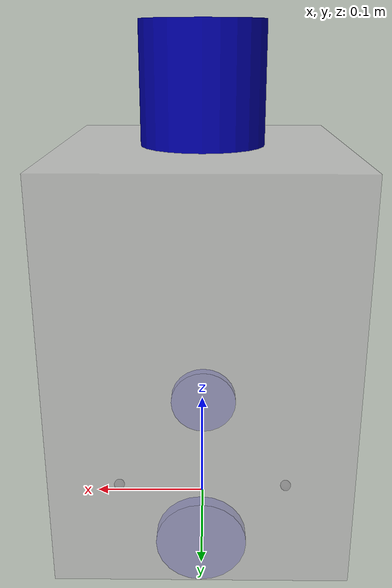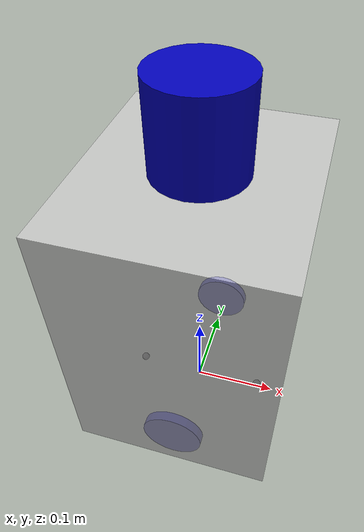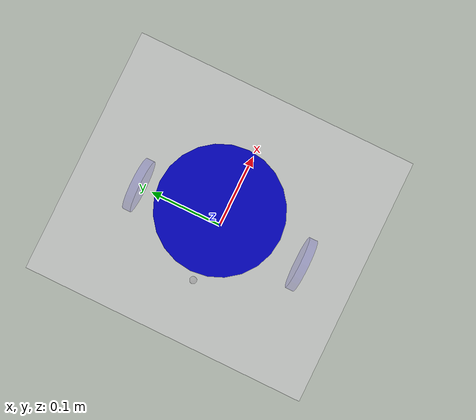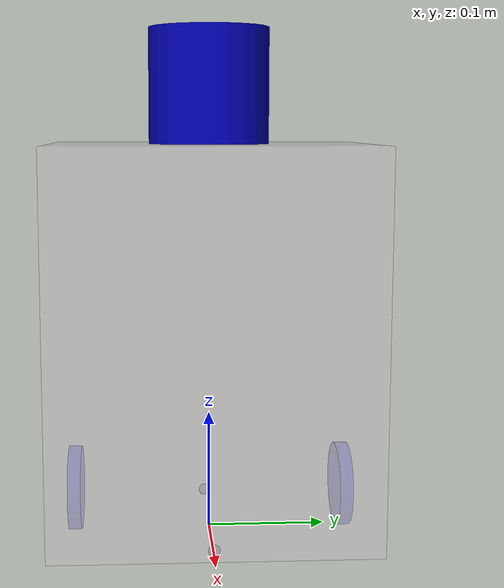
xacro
<?xml version="1.0"?>
<robot xmlns:xacro="http://www.ros.org/wiki/xacro" name="snd_robot">

    <xacro:include filename="$(find snd_description)/urdf/macros.xacro"/>

    <xacro:include filename="$(find snd_description)/urdf/simple_robot_base.urdf.xacro"/>
    <xacro:robot_body/>

    <xacro:include filename="$(find snd_description)/urdf/simple_robot_gazebo.xacro"/>

    <!-- Rplidar -->
    <xacro:include filename="$(find snd_description)/urdf/sensors/rplidara2.urdf.xacro"/>
    <xacro:sensor_rplidara2 parent="base_link">
        <origin xyz="0.0 0.0 ${body_height + 0.05}" rpy="0 0 1.570796327"/>
    </xacro:sensor_rplidara2>

</robot>

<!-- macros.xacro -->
<robot xmlns:xacro="http://www.ros.org/wiki/xacro" name="macros">
    <xacro:property name="PI" value="3.141592654"/>

    <xacro:macro name="cylinder_inertia" params="m r h">
        <inertia
            ixx="${m*(3*r*r+h*h)/12}" ixy = "0" ixz = "0"
            iyy="${m*(3*r*r+h*h)/12}" iyz = "0"
            izz="${m*r*r/2}"
            />
    </xacro:macro>

    <xacro:macro name="box_inertia" params="m x y z">
        <inertia
            ixx="${m*(y*y+z*z)/12}" ixy = "0" ixz = "0"
            iyy="${m*(x*x+z*z)/12}" iyz = "0"
            izz="${m*(x*x+z*z)/12}"
            />
    </xacro:macro>

    <xacro:macro name="sphere_inertia" params="m r">
        <inertia
            ixx="${2*m*r*r/5}" ixy = "0" ixz = "0"
            iyy="${2*m*r*r/5}" iyz = "0"
            izz="${2*m*r*r/5}"
            />
    </xacro:macro>
</robot>

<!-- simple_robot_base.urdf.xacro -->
<robot xmlns:xacro="http://www.ros.org/wiki/xacro" name="snd_robot">
    <xacro:include filename="$(find snd_description)/urdf/macros.xacro"/>

    <xacro:property name="motor_wheel_radius" value="0.0355"/>
    <xacro:property name="motor_wheel_width" value="0.011"/>
    <xacro:property name="motor_wheel_separation" value="0.23"/>
    <xacro:property name="body_length" value="0.23"/>
    <xacro:property name="body_width" value="0.265"/>
    <xacro:property name="body_height" value="0.32"/>
    <!-- distance between floor and base of robot body -->
    <xacro:property name="robot_clearance" value="0.010"/>
    <xacro:property name="robot_weight" value="4.0"/>
    <xacro:property name="caster_radius" value="0.005"/>
    <xacro:property name="beacon_mast_height" value="0.095"/>
    <xacro:property name="beacon_mast_radius" value="0.050"/>

    <material name="dark_grey">
        <color rgba="0.2 0.2 0.2 1"/>
    </material>
    <material name="light_grey">
        <color rgba="0.8 0.8 0.8 0.8"/>
    </material>
    <material name="beige">
        <color rgba="0.76 0.76 0.7 1.0"/>
    </material>
    <material name="blue">
        <color rgba="0.0 0.0 0.7 1.0"/>
    </material>

    <xacro:macro name="robot_body">
        <link name="base_link"></link>

        <link name="robot_body">
            <visual>
                <orign xyz="0 0 0" rpy="0 0 0"/>
                <geometry>
                    <box size="${body_length} ${body_width} ${body_height}"/>
                </geometry>
                <material name="light_grey"/>
            </visual>
            <collision>
                <orign xyz="0.0 0 0" rpy="0 0 0"/>
                <geometry>
                    <box size="${body_length} ${body_width} ${body_height}"/>
                </geometry>
            </collision>
            <inertial>
                <orign xyz="0.0 0 0" rpy="0 0 0"/>
                <mass value="${robot_weight}"/>
                <xacro:box_inertia m="${robot_weight}" x="${body_length}" y="${body_width}" z="${body_height}"/>
            </inertial>
        </link>
        <joint name="base_to_body" type="fixed">
            <parent link="base_link"/>
            <child link="robot_body"/>
            <origin xyz="0 0 ${body_height/2 + robot_clearance}" rpy="0 0 0"/>
        </joint>

        <link name="beacon_mast">
            <visual>
                <orign xyz="0 0 0" rpy="0 0 0"/>
                <geometry>
                    <cylinder length="${beacon_mast_height}" radius="${beacon_mast_radius}"/>
                </geometry>
                <material name="blue"/>
            </visual>
            <collision>
                <orign xyz="0 0 0" rpy="0 0 0"/>
                <geometry>
                    <cylinder length="${beacon_mast_height}" radius="${beacon_mast_radius}"/>
                </geometry>
                <material name="blue"/>
            </collision>
            <inertial>
                <orign xyz="0 0 0" rpy="0 0 0"/>
                <mass value="0.01"/>
                <xacro:cylinder_inertia m="0.1" r="${motor_wheel_radius}" h="${motor_wheel_width}"/>
            </inertial>
        </link>
        <joint name="mast_to_body" type="fixed">
            <parent link="base_link"/>
            <child link="beacon_mast"/>
            <origin xyz="0 0 ${body_height + robot_clearance + beacon_mast_height / 2}" rpy="0 0 0"/>
        </joint>

        <xacro:macro name="wheel" params="prefix ypos dir">
            <link name="${prefix}_wheel">
                <visual>
                    <origin xyz="0 0 0" rpy="0 ${pi/2} 0"/>
                    <geometry>
                        <cylinder length="${motor_wheel_width}" radius="${motor_wheel_radius}"/>
                    </geometry>
                    <material name="blue"/>
                </visual>
                <collision>
                    <origin xyz="0 0 0" rpy="0 ${pi/2} 0"/>
                    <geometry>
                        <cylinder length="${motor_wheel_width}" radius="${motor_wheel_radius}"/>
                    </geometry>
                </collision>
                <inertial>
                    <origin xyz="0 0 0" rpy="0 ${pi/2} 0"/>
                    <mass value="0.1"/>
                    <xacro:cylinder_inertia m="0.1" r="${motor_wheel_radius}" h="${motor_wheel_width}"/>
                </inertial>
            </link>
            <joint name="${prefix}_wheel_joint" type="continuous">
                <parent link="base_link"/>
                <child link="${prefix}_wheel"/>
                <origin xyz="0 ${ypos} ${motor_wheel_radius}" rpy="0 0 ${dir * pi/2}"/>
                <axis xyz="${dir} 0 0"/>
            </joint>
            <transmission name="${prefix}_wheel_trans">
                <type>transmission_interface/SimpleTransmission</type>
                <joint name="${prefix}_wheel_joint">
                    <hardwareInterface>hardware_interface/VelocityJointInterface</hardwareInterface>
                </joint>
                <actuator name="${prefix}_wheel_actuator">
                    <mechanicalReduction>1</mechanicalReduction>
                </actuator>
            </transmission>

            <gazebo reference="${prefix}_wheel">
                <mu1 value="1.0"/>
                <mu2 value="1.0"/>
            </gazebo>
        </xacro:macro>
        <xacro:wheel prefix="left"  ypos="${motor_wheel_separation / 2.0}" dir="1"/>
        <xacro:wheel prefix="right" ypos="-${motor_wheel_separation / 2.0}" dir="-1"/>

        <xacro:macro name="caster" params="prefix position">
            <link name="${prefix}_caster">
                <visual>
                    <origin xyz="0 0 0" rpy="0 0 0"/>
                    <geometry>
                        <sphere radius="${caster_radius}"/>
                    </geometry>
                    <material name="dark_grey"/>
                </visual>
                <collision>
                    <origin xyz="0 0 0" rpy="0 0 0"/>
                    <geometry>
                        <sphere radius="${caster_radius}"/>
                    </geometry>
                </collision>
                <inertial>
                    <origin xyz="0 0 0" rpy="0 0 0"/>
                    <mass value="0.05"/>
                    <xacro:sphere_inertia m="0.05" r="${caster_radius}"/>
                </inertial>
            </link>
            <joint name="base_to_${prefix}_caster" type="fixed">
                <parent link="base_link"/>
                <child link="${prefix}_caster"/>
                <origin xyz="${position}" rpy="0 0 0"/>
            </joint>
            <gazebo reference="${prefix}_caster">
                <mu1 value="0.0"/>
                <mu2 value="0.0"/>
            </gazebo>
        </xacro:macro>
        <xacro:caster prefix="front" position="0.08 0 ${caster_radius + 0.001}"/>
        <xacro:caster prefix="rear" position="-0.08 0 ${caster_radius + 0.001}"/>

    </xacro:macro>
</robot>

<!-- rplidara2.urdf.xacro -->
<robot xmlns:xacro="http://www.ros.org/wiki/xacro" name="rplidara2">
    <xacro:include filename="$(find snd_description)/urdf/macros.xacro"/>

    <xacro:macro name="sensor_rplidara2" params="parent *origin">
        <link name="rplidar_link">
        </link>
        <joint name="rplidar_to_${parent}" type="fixed">
            <parent link="${parent}"/>
            <child link="rplidar_link"/>
            <xacro:insert_block name="origin"/>
        </joint>

        <gazebo reference="rplidar_link">
            <material value="Gazebo/Black" />
            <sensor type="ray" name="rplidar">
                <always_on>true</always_on>
                <update_rate>10</update_rate>
                <pose>0 0 0 0 0 0</pose>
                <visualize>true</visualize>
                <ray>
                    <scan>
                        <horizontal>
                            <samples>360</samples>
                            <resolution>1</resolution>
                            <min_angle>0</min_angle>
                            <max_angle>6.28318530718</max_angle>
                        </horizontal>
                    </scan>
                    <range>
                        <min>0.15</min>
                        <max>3</max>
                        <resolution>0.01</resolution>
                    </range>
                </ray>
                <plugin name="gazebo_ros_rplidar_controller" filename="libgazebo_ros_laser.so">
                    <gaussianNoise>0.005</gaussianNoise>
                    <alwaysOn>true</alwaysOn>
                    <updateRate>10</updateRate>
                    <topicName>/scan</topicName>
                    <frameName>rplidar_link</frameName>
                </plugin>
            </sensor>
        </gazebo>
    </xacro:macro>
</robot>
